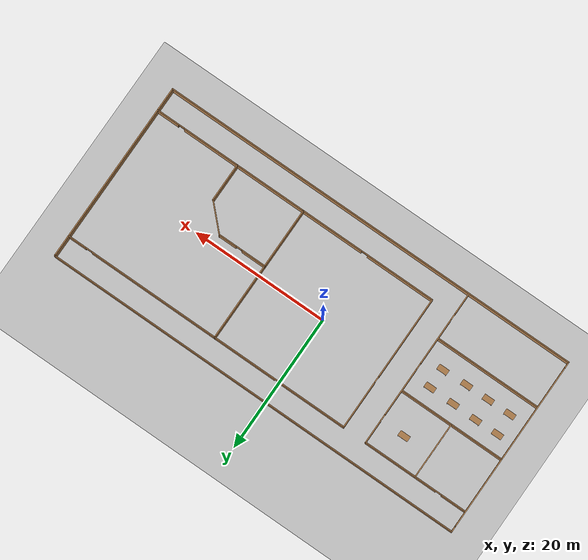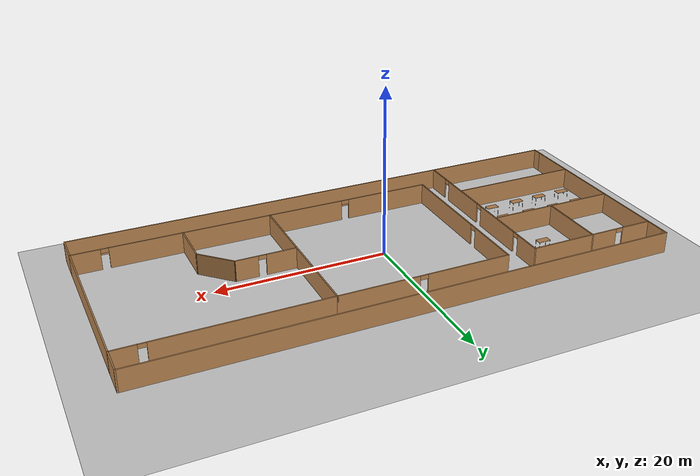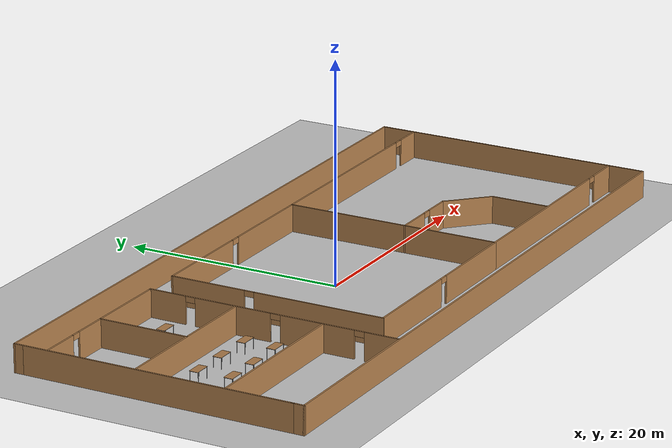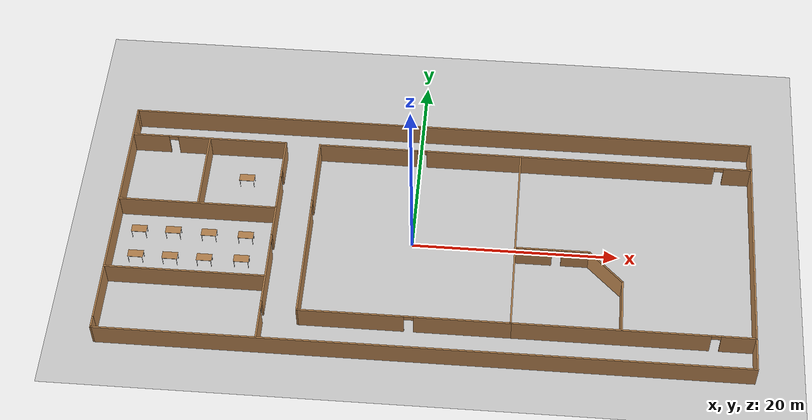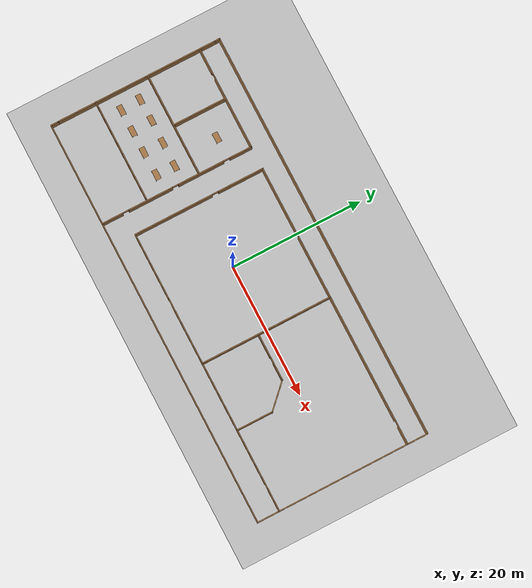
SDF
<sdf version="1.7">
 <world name="default">
  <model name="ground_plane">
   <static>1</static>
   <link name="link">
    <collision name="collision">
     <geometry><plane><normal>0 0 1</normal><size>100 100</size></plane></geometry>
     <surface>
      <contact><collide_bitmask>65535</collide_bitmask></contact>
      <friction><ode><mu>100</mu><mu2>50</mu2></ode></friction>
     </surface>
    </collision>
    <visual name="visual">
     <cast_shadows>0</cast_shadows>
     <geometry><plane><normal>0 0 1</normal><size>100 100</size></plane></geometry>
     <material>
      <script><uri>file://media/materials/scripts/gazebo.material</uri><name>Gazebo/Grey</name></script>
     </material>
    </visual>
   </link>
  </model>
  <model name="Industry_0">
   <pose>1.95149 -0.16782 0 0 -0 0</pose>
   <link name="Wall_107">
    <pose>-1.975 10.05 0 0 -0 0</pose>
    <visual name="Wall_107_Visual_0">
     <pose>-5.18531 0 1.25 0 -0 0</pose>
     <geometry><box><size>9.87937 0.15 2.5</size></box></geometry>
     <material>
      <script><uri>file://media/materials/scripts/gazebo.material</uri><name>Gazebo/Wood</name></script>
      <ambient>1 1 1 1</ambient>
     </material>
     <meta><layer>0</layer></meta>
    </visual>
    <collision name="Wall_107_Collision_0">
     <geometry><box><size>9.87937 0.15 2.5</size></box></geometry>
     <pose>-5.18531 0 1.25 0 -0 0</pose>
    </collision>
    <visual name="Wall_107_Visual_1">
     <pose>5.38969 0 1.25 0 -0 0</pose>
     <geometry><box><size>9.47063 0.15 2.5</size></box></geometry>
     <material>
      <script><uri>file://media/materials/scripts/gazebo.material</uri><name>Gazebo/Wood</name></script>
      <ambient>1 1 1 1</ambient>
     </material>
     <meta><layer>0</layer></meta>
    </visual>
    <collision name="Wall_107_Collision_1">
     <geometry><box><size>9.47063 0.15 2.5</size></box></geometry>
     <pose>5.38969 0 1.25 0 -0 0</pose>
    </collision>
    <visual name="Wall_107_Visual_2">
     <pose>0.204375 0 2.25 0 -0 0</pose>
     <geometry><box><size>0.9 0.15 0.5</size></box></geometry>
     <material>
      <script><uri>file://media/materials/scripts/gazebo.material</uri><name>Gazebo/Wood</name></script>
      <ambient>1 1 1 1</ambient>
     </material>
     <meta><layer>0</layer></meta>
    </visual>
    <collision name="Wall_107_Collision_2">
     <geometry><box><size>0.9 0.15 0.5</size></box></geometry>
     <pose>0.204375 0 2.25 0 -0 0</pose>
    </collision>
   </link>
   <link name="Wall_108">
    <collision name="Wall_108_Collision">
     <geometry><box><size>20 0.15 2.5</size></box></geometry>
     <pose>0 0 1.25 0 -0 0</pose>
    </collision>
    <visual name="Wall_108_Visual">
     <pose>0 0 1.25 0 -0 0</pose>
     <geometry><box><size>20 0.15 2.5</size></box></geometry>
     <material>
      <script><uri>file://media/materials/scripts/gazebo.material</uri><name>Gazebo/Wood</name></script>
      <ambient>1 1 1 1</ambient>
     </material>
     <meta><layer>0</layer></meta>
    </visual>
    <pose>8.075 0.125 0 0 -0 -1.5708</pose>
   </link>
   <link name="Wall_109">
    <pose>-1.975 -9.8 0 0 -0 3.14159</pose>
    <visual name="Wall_109_Visual_0">
     <pose>-5.52872 0 1.25 0 -0 0</pose>
     <geometry><box><size>9.19257 0.15 2.5</size></box></geometry>
     <material>
      <script><uri>file://media/materials/scripts/gazebo.material</uri><name>Gazebo/Wood</name></script>
      <ambient>1 1 1 1</ambient>
     </material>
     <meta><layer>0</layer></meta>
    </visual>
    <collision name="Wall_109_Collision_0">
     <geometry><box><size>9.19257 0.15 2.5</size></box></geometry>
     <pose>-5.52872 0 1.25 0 -0 0</pose>
    </collision>
    <visual name="Wall_109_Visual_1">
     <pose>5.04629 0 1.25 0 -0 0</pose>
     <geometry><box><size>10.1574 0.15 2.5</size></box></geometry>
     <material>
      <script><uri>file://media/materials/scripts/gazebo.material</uri><name>Gazebo/Wood</name></script>
      <ambient>1 1 1 1</ambient>
     </material>
     <meta><layer>0</layer></meta>
    </visual>
    <collision name="Wall_109_Collision_1">
     <geometry><box><size>10.1574 0.15 2.5</size></box></geometry>
     <pose>5.04629 0 1.25 0 -0 0</pose>
    </collision>
    <visual name="Wall_109_Visual_2">
     <pose>-0.482429 0 2.25 0 -0 0</pose>
     <geometry><box><size>0.9 0.15 0.5</size></box></geometry>
     <material>
      <script><uri>file://media/materials/scripts/gazebo.material</uri><name>Gazebo/Wood</name></script>
      <ambient>1 1 1 1</ambient>
     </material>
     <meta><layer>0</layer></meta>
    </visual>
    <collision name="Wall_109_Collision_2">
     <geometry><box><size>0.9 0.15 0.5</size></box></geometry>
     <pose>-0.482429 0 2.25 0 -0 0</pose>
    </collision>
   </link>
   <link name="Wall_111">
    <pose>-12.025 0.125 0 0 -0 -1.5708</pose>
    <visual name="Wall_111_Visual_0">
     <pose>-6.49758 0 1.25 0 -0 0</pose>
     <geometry><box><size>7.00483 0.15 2.5</size></box></geometry>
     <material>
      <script><uri>file://media/materials/scripts/gazebo.material</uri><name>Gazebo/Wood</name></script>
      <ambient>1 1 1 1</ambient>
     </material>
     <meta><layer>0</layer></meta>
    </visual>
    <collision name="Wall_111_Collision_0">
     <geometry><box><size>7.00483 0.15 2.5</size></box></geometry>
     <pose>-6.49758 0 1.25 0 -0 0</pose>
    </collision>
    <visual name="Wall_111_Visual_1">
     <pose>3.95241 0 1.25 0 -0 0</pose>
     <geometry><box><size>12.0952 0.15 2.5</size></box></geometry>
     <material>
      <script><uri>file://media/materials/scripts/gazebo.material</uri><name>Gazebo/Wood</name></script>
      <ambient>1 1 1 1</ambient>
     </material>
     <meta><layer>0</layer></meta>
    </visual>
    <collision name="Wall_111_Collision_1">
     <geometry><box><size>12.0952 0.15 2.5</size></box></geometry>
     <pose>3.95241 0 1.25 0 -0 0</pose>
    </collision>
    <visual name="Wall_111_Visual_2">
     <pose>-2.54517 0 2.25 0 -0 0</pose>
     <geometry><box><size>0.9 0.15 0.5</size></box></geometry>
     <material>
      <script><uri>file://media/materials/scripts/gazebo.material</uri><name>Gazebo/Wood</name></script>
      <ambient>1 1 1 1</ambient>
     </material>
     <meta><layer>0</layer></meta>
    </visual>
    <collision name="Wall_111_Collision_2">
     <geometry><box><size>0.9 0.15 0.5</size></box></geometry>
     <pose>-2.54517 0 2.25 0 -0 0</pose>
    </collision>
   </link>
   <link name="Wall_113">
    <pose>19.5 10.05 0 0 -0 0</pose>
    <visual name="Wall_113_Visual_0">
     <pose>-1.84564 0 1.25 0 -0 0</pose>
     <geometry><box><size>19.3087 0.15 2.5</size></box></geometry>
     <material>
      <script><uri>file://media/materials/scripts/gazebo.material</uri><name>Gazebo/Wood</name></script>
      <ambient>1 1 1 1</ambient>
     </material>
     <meta><layer>0</layer></meta>
    </visual>
    <collision name="Wall_113_Collision_0">
     <geometry><box><size>19.3087 0.15 2.5</size></box></geometry>
     <pose>-1.84564 0 1.25 0 -0 0</pose>
    </collision>
    <visual name="Wall_113_Visual_1">
     <pose>10.1044 0 1.25 0 -0 0</pose>
     <geometry><box><size>2.79128 0.15 2.5</size></box></geometry>
     <material>
      <script><uri>file://media/materials/scripts/gazebo.material</uri><name>Gazebo/Wood</name></script>
      <ambient>1 1 1 1</ambient>
     </material>
     <meta><layer>0</layer></meta>
    </visual>
    <collision name="Wall_113_Collision_1">
     <geometry><box><size>2.79128 0.15 2.5</size></box></geometry>
     <pose>10.1044 0 1.25 0 -0 0</pose>
    </collision>
    <visual name="Wall_113_Visual_2">
     <pose>8.25872 0 2.25 0 -0 0</pose>
     <geometry><box><size>0.9 0.15 0.5</size></box></geometry>
     <material>
      <script><uri>file://media/materials/scripts/gazebo.material</uri><name>Gazebo/Wood</name></script>
      <ambient>1 1 1 1</ambient>
     </material>
     <meta><layer>0</layer></meta>
    </visual>
    <collision name="Wall_113_Collision_2">
     <geometry><box><size>0.9 0.15 0.5</size></box></geometry>
     <pose>8.25872 0 2.25 0 -0 0</pose>
    </collision>
   </link>
   <link name="Wall_114">
    <collision name="Wall_114_Collision">
     <geometry><box><size>20 0.15 2.5</size></box></geometry>
     <pose>0 0 1.25 0 -0 0</pose>
    </collision>
    <visual name="Wall_114_Visual">
     <pose>0 0 1.25 0 -0 0</pose>
     <geometry><box><size>20 0.15 2.5</size></box></geometry>
     <material>
      <script><uri>file://media/materials/scripts/gazebo.material</uri><name>Gazebo/Wood</name></script>
      <ambient>1 1 1 1</ambient>
     </material>
     <meta><layer>0</layer></meta>
    </visual>
    <pose>30.925 0.125 0 0 -0 -1.5708</pose>
   </link>
   <link name="Wall_115">
    <pose>19.5 -9.8 0 0 -0 3.14159</pose>
    <visual name="Wall_115_Visual_0">
     <pose>-9.82631 0 1.25 0 -0 0</pose>
     <geometry><box><size>3.34739 0.15 2.5</size></box></geometry>
     <material>
      <script><uri>file://media/materials/scripts/gazebo.material</uri><name>Gazebo/Wood</name></script>
      <ambient>1 1 1 1</ambient>
     </material>
     <meta><layer>0</layer></meta>
    </visual>
    <collision name="Wall_115_Collision_0">
     <geometry><box><size>3.34739 0.15 2.5</size></box></geometry>
     <pose>-9.82631 0 1.25 0 -0 0</pose>
    </collision>
    <visual name="Wall_115_Visual_1">
     <pose>2.12369 0 1.25 0 -0 0</pose>
     <geometry><box><size>18.7526 0.15 2.5</size></box></geometry>
     <material>
      <script><uri>file://media/materials/scripts/gazebo.material</uri><name>Gazebo/Wood</name></script>
      <ambient>1 1 1 1</ambient>
     </material>
     <meta><layer>0</layer></meta>
    </visual>
    <collision name="Wall_115_Collision_1">
     <geometry><box><size>18.7526 0.15 2.5</size></box></geometry>
     <pose>2.12369 0 1.25 0 -0 0</pose>
    </collision>
    <visual name="Wall_115_Visual_2">
     <pose>-7.70261 0 2.25 0 -0 0</pose>
     <geometry><box><size>0.9 0.15 0.5</size></box></geometry>
     <material>
      <script><uri>file://media/materials/scripts/gazebo.material</uri><name>Gazebo/Wood</name></script>
      <ambient>1 1 1 1</ambient>
     </material>
     <meta><layer>0</layer></meta>
    </visual>
    <collision name="Wall_115_Collision_2">
     <geometry><box><size>0.9 0.15 0.5</size></box></geometry>
     <pose>-7.70261 0 2.25 0 -0 0</pose>
    </collision>
   </link>
   <link name="Wall_119">
    <collision name="Wall_119_Collision">
     <geometry><box><size>24.75 0.15 2.5</size></box></geometry>
     <pose>0 0 1.25 0 -0 0</pose>
    </collision>
    <visual name="Wall_119_Visual">
     <pose>0 0 1.25 0 -0 0</pose>
     <geometry><box><size>24.75 0.15 2.5</size></box></geometry>
     <material>
      <script><uri>file://media/materials/scripts/gazebo.material</uri><name>Gazebo/Wood</name></script>
      <ambient>1 1 1 1</ambient>
     </material>
     <meta><layer>0</layer></meta>
    </visual>
    <pose>-30.925 0.1 0 0 -0 -1.5708</pose>
   </link>
   <link name="Wall_135">
    <collision name="Wall_135_Collision">
     <geometry><box><size>3.25 0.15 2.5</size></box></geometry>
     <pose>0 0 1.25 0 -0 0</pose>
    </collision>
    <visual name="Wall_135_Visual">
     <pose>0 0 1.25 0 -0 0</pose>
     <geometry><box><size>3.25 0.15 2.5</size></box></geometry>
     <material>
      <script><uri>file://media/materials/scripts/gazebo.material</uri><name>Gazebo/Wood</name></script>
      <ambient>1 1 1 1</ambient>
     </material>
     <meta><layer>0</layer></meta>
    </visual>
    <pose>30.925 11.6 0 0 -0 1.5708</pose>
   </link>
   <link name="Wall_136">
    <collision name="Wall_136_Collision">
     <geometry><box><size>62 0.15 2.5</size></box></geometry>
     <pose>0 0 1.25 0 -0 0</pose>
    </collision>
    <visual name="Wall_136_Visual">
     <pose>0 0 1.25 0 -0 0</pose>
     <geometry><box><size>62 0.15 2.5</size></box></geometry>
     <material>
      <script><uri>file://media/materials/scripts/gazebo.material</uri><name>Gazebo/Wood</name></script>
      <ambient>1 1 1 1</ambient>
     </material>
     <meta><layer>0</layer></meta>
    </visual>
    <pose>1e-06 13.15 0 0 -0 3.14159</pose>
   </link>
   <link name="Wall_137">
    <collision name="Wall_137_Collision">
     <geometry><box><size>0.9 0.15 2.5</size></box></geometry>
     <pose>0 0 1.25 0 -0 0</pose>
    </collision>
    <visual name="Wall_137_Visual">
     <pose>0 0 1.25 0 -0 0</pose>
     <geometry><box><size>0.9 0.15 2.5</size></box></geometry>
     <material>
      <script><uri>file://media/materials/scripts/gazebo.material</uri><name>Gazebo/Wood</name></script>
      <ambient>1 1 1 1</ambient>
     </material>
     <meta><layer>0</layer></meta>
    </visual>
    <pose>-30.925 12.775 0 0 -0 -1.5708</pose>
   </link>
   <link name="Wall_139">
    <collision name="Wall_139_Collision">
     <geometry><box><size>3.5 0.15 2.5</size></box></geometry>
     <pose>0 0 1.25 0 -0 0</pose>
    </collision>
    <visual name="Wall_139_Visual">
     <pose>0 0 1.25 0 -0 0</pose>
     <geometry><box><size>3.5 0.15 2.5</size></box></geometry>
     <material>
      <script><uri>file://media/materials/scripts/gazebo.material</uri><name>Gazebo/Wood</name></script>
      <ambient>1 1 1 1</ambient>
     </material>
     <meta><layer>0</layer></meta>
    </visual>
    <pose>30.925 -11.475 0 0 -0 -1.5708</pose>
   </link>
   <link name="Wall_140">
    <collision name="Wall_140_Collision">
     <geometry><box><size>62 0.15 2.5</size></box></geometry>
     <pose>0 0 1.25 0 -0 0</pose>
    </collision>
    <visual name="Wall_140_Visual">
     <pose>0 0 1.25 0 -0 0</pose>
     <geometry><box><size>62 0.15 2.5</size></box></geometry>
     <material>
      <script><uri>file://media/materials/scripts/gazebo.material</uri><name>Gazebo/Wood</name></script>
      <ambient>1 1 1 1</ambient>
     </material>
     <meta><layer>0</layer></meta>
    </visual>
    <pose>1e-06 -13.15 0 0 -0 3.14159</pose>
   </link>
   <link name="Wall_141">
    <collision name="Wall_141_Collision">
     <geometry><box><size>1.25 0.15 2.5</size></box></geometry>
     <pose>0 0 1.25 0 -0 0</pose>
    </collision>
    <visual name="Wall_141_Visual">
     <pose>0 0 1.25 0 -0 0</pose>
     <geometry><box><size>1.25 0.15 2.5</size></box></geometry>
     <material>
      <script><uri>file://media/materials/scripts/gazebo.material</uri><name>Gazebo/Wood</name></script>
      <ambient>1 1 1 1</ambient>
     </material>
     <meta><layer>0</layer></meta>
    </visual>
    <pose>-30.925 -12.6 0 0 -0 1.5708</pose>
   </link>
   <link name="Wall_150">
    <pose>-15.4509 -1.48359 0 0 -0 -1.5708</pose>
    <visual name="Wall_150_Visual_0">
     <pose>-9.89393 0 1.25 0 -0 0</pose>
     <geometry><box><size>3.46215 0.15 2.5</size></box></geometry>
     <material>
      <script><uri>file://media/materials/scripts/gazebo.material</uri><name>Gazebo/Wood</name></script>
      <ambient>1 1 1 1</ambient>
     </material>
     <meta><layer>0</layer></meta>
    </visual>
    <collision name="Wall_150_Collision_0">
     <geometry><box><size>3.46215 0.15 2.5</size></box></geometry>
     <pose>-9.89393 0 1.25 0 -0 0</pose>
    </collision>
    <visual name="Wall_150_Visual_1">
     <pose>-3.70887 0 1.25 0 -0 0</pose>
     <geometry><box><size>7.10796 0.15 2.5</size></box></geometry>
     <material>
      <script><uri>file://media/materials/scripts/gazebo.material</uri><name>Gazebo/Wood</name></script>
      <ambient>1 1 1 1</ambient>
     </material>
     <meta><layer>0</layer></meta>
    </visual>
    <collision name="Wall_150_Collision_1">
     <geometry><box><size>7.10796 0.15 2.5</size></box></geometry>
     <pose>-3.70887 0 1.25 0 -0 0</pose>
    </collision>
    <visual name="Wall_150_Visual_2">
     <pose>4.16006 0 1.25 0 -0 0</pose>
     <geometry><box><size>6.8299 0.15 2.5</size></box></geometry>
     <material>
      <script><uri>file://media/materials/scripts/gazebo.material</uri><name>Gazebo/Wood</name></script>
      <ambient>1 1 1 1</ambient>
     </material>
     <meta><layer>0</layer></meta>
    </visual>
    <collision name="Wall_150_Collision_2">
     <geometry><box><size>6.8299 0.15 2.5</size></box></geometry>
     <pose>4.16006 0 1.25 0 -0 0</pose>
    </collision>
    <visual name="Wall_150_Visual_3">
     <pose>10.05 0 1.25 0 -0 0</pose>
     <geometry><box><size>3.14999 0.15 2.5</size></box></geometry>
     <material>
      <script><uri>file://media/materials/scripts/gazebo.material</uri><name>Gazebo/Wood</name></script>
      <ambient>1 1 1 1</ambient>
     </material>
     <meta><layer>0</layer></meta>
    </visual>
    <collision name="Wall_150_Collision_3">
     <geometry><box><size>3.14999 0.15 2.5</size></box></geometry>
     <pose>10.05 0 1.25 0 -0 0</pose>
    </collision>
    <visual name="Wall_150_Visual_4">
     <pose>-7.71285 0 2.25 0 -0 0</pose>
     <geometry><box><size>0.9 0.15 0.5</size></box></geometry>
     <material>
      <script><uri>file://media/materials/scripts/gazebo.material</uri><name>Gazebo/Wood</name></script>
      <ambient>1 1 1 1</ambient>
     </material>
     <meta><layer>0</layer></meta>
    </visual>
    <collision name="Wall_150_Collision_4">
     <geometry><box><size>0.9 0.15 0.5</size></box></geometry>
     <pose>-7.71285 0 2.25 0 -0 0</pose>
    </collision>
    <visual name="Wall_150_Visual_5">
     <pose>0.295105 0 2.25 0 -0 0</pose>
     <geometry><box><size>0.9 0.15 0.5</size></box></geometry>
     <material>
      <script><uri>file://media/materials/scripts/gazebo.material</uri><name>Gazebo/Wood</name></script>
      <ambient>1 1 1 1</ambient>
     </material>
     <meta><layer>0</layer></meta>
    </visual>
    <collision name="Wall_150_Collision_5">
     <geometry><box><size>0.9 0.15 0.5</size></box></geometry>
     <pose>0.295105 0 2.25 0 -0 0</pose>
    </collision>
    <visual name="Wall_150_Visual_6">
     <pose>8.02501 0 2.25 0 -0 0</pose>
     <geometry><box><size>0.9 0.15 0.5</size></box></geometry>
     <material>
      <script><uri>file://media/materials/scripts/gazebo.material</uri><name>Gazebo/Wood</name></script>
      <ambient>1 1 1 1</ambient>
     </material>
     <meta><layer>0</layer></meta>
    </visual>
    <collision name="Wall_150_Collision_6">
     <geometry><box><size>0.9 0.15 0.5</size></box></geometry>
     <pose>8.02501 0 2.25 0 -0 0</pose>
    </collision>
   </link>
   <link name="Wall_152">
    <pose>-23.1259 10.0664 0 0 -0 3.14159</pose>
    <visual name="Wall_152_Visual_0">
     <pose>-2.2652 0 1.25 0 -0 0</pose>
     <geometry><box><size>10.9696 0.15 2.5</size></box></geometry>
     <material>
      <script><uri>file://media/materials/scripts/gazebo.material</uri><name>Gazebo/Wood</name></script>
      <ambient>1 1 1 1</ambient>
     </material>
     <meta><layer>0</layer></meta>
    </visual>
    <collision name="Wall_152_Collision_0">
     <geometry><box><size>10.9696 0.15 2.5</size></box></geometry>
     <pose>-2.2652 0 1.25 0 -0 0</pose>
    </collision>
    <visual name="Wall_152_Visual_1">
     <pose>5.9348 0 1.25 0 -0 0</pose>
     <geometry><box><size>3.63039 0.15 2.5</size></box></geometry>
     <material>
      <script><uri>file://media/materials/scripts/gazebo.material</uri><name>Gazebo/Wood</name></script>
      <ambient>1 1 1 1</ambient>
     </material>
     <meta><layer>0</layer></meta>
    </visual>
    <collision name="Wall_152_Collision_1">
     <geometry><box><size>3.63039 0.15 2.5</size></box></geometry>
     <pose>5.9348 0 1.25 0 -0 0</pose>
    </collision>
    <visual name="Wall_152_Visual_2">
     <pose>3.66961 0 2.25 0 -0 0</pose>
     <geometry><box><size>0.9 0.15 0.5</size></box></geometry>
     <material>
      <script><uri>file://media/materials/scripts/gazebo.material</uri><name>Gazebo/Wood</name></script>
      <ambient>1 1 1 1</ambient>
     </material>
     <meta><layer>0</layer></meta>
    </visual>
    <collision name="Wall_152_Collision_2">
     <geometry><box><size>0.9 0.15 0.5</size></box></geometry>
     <pose>3.66961 0 2.25 0 -0 0</pose>
    </collision>
   </link>
   <link name="Wall_156">
    <collision name="Wall_156_Collision">
     <geometry><box><size>15.5 0.15 2.5</size></box></geometry>
     <pose>0 0 1.25 0 -0 0</pose>
    </collision>
    <visual name="Wall_156_Visual">
     <pose>0 0 1.25 0 -0 0</pose>
     <geometry><box><size>15.5 0.15 2.5</size></box></geometry>
     <material>
      <script><uri>file://media/materials/scripts/gazebo.material</uri><name>Gazebo/Wood</name></script>
      <ambient>1 1 1 1</ambient>
     </material>
     <meta><layer>0</layer></meta>
    </visual>
    <pose>-23.2371 -6.17195 0 0 -0 3.14159</pose>
   </link>
   <link name="Wall_158">
    <collision name="Wall_158_Collision">
     <geometry><box><size>15.5 0.15 2.5</size></box></geometry>
     <pose>0 0 1.25 0 -0 0</pose>
    </collision>
    <visual name="Wall_158_Visual">
     <pose>0 0 1.25 0 -0 0</pose>
     <geometry><box><size>15.5 0.15 2.5</size></box></geometry>
     <material>
      <script><uri>file://media/materials/scripts/gazebo.material</uri><name>Gazebo/Wood</name></script>
      <ambient>1 1 1 1</ambient>
     </material>
     <meta><layer>0</layer></meta>
    </visual>
    <pose>-23.1815 1.94723 0 0 -0 3.14159</pose>
   </link>
   <link name="Wall_162">
    <collision name="Wall_162_Collision">
     <geometry><box><size>8.25 0.15 2.5</size></box></geometry>
     <pose>0 0 1.25 0 -0 0</pose>
    </collision>
    <visual name="Wall_162_Visual">
     <pose>0 0 1.25 0 -0 0</pose>
     <geometry><box><size>8.25 0.15 2.5</size></box></geometry>
     <material>
      <script><uri>file://media/materials/scripts/gazebo.material</uri><name>Gazebo/Wood</name></script>
      <ambient>1 1 1 1</ambient>
     </material>
     <meta><layer>0</layer></meta>
    </visual>
    <pose>-23.1252 6.01641 0 0 -0 -1.5708</pose>
   </link>
   <link name="Wall_166">
    <pose>11.6225 -1.11137 0 0 -0 0</pose>
    <visual name="Wall_166_Visual_0">
     <pose>-1.81051 0 1.25 0 -0 0</pose>
     <geometry><box><size>3.62898 0.15 2.5</size></box></geometry>
     <material>
      <script><uri>file://media/materials/scripts/gazebo.material</uri><name>Gazebo/Wood</name></script>
      <ambient>1 1 1 1</ambient>
     </material>
     <meta><layer>0</layer></meta>
    </visual>
    <collision name="Wall_166_Collision_0">
     <geometry><box><size>3.62898 0.15 2.5</size></box></geometry>
     <pose>-1.81051 0 1.25 0 -0 0</pose>
    </collision>
    <visual name="Wall_166_Visual_1">
     <pose>2.26449 0 1.25 0 -0 0</pose>
     <geometry><box><size>2.72102 0.15 2.5</size></box></geometry>
     <material>
      <script><uri>file://media/materials/scripts/gazebo.material</uri><name>Gazebo/Wood</name></script>
      <ambient>1 1 1 1</ambient>
     </material>
     <meta><layer>0</layer></meta>
    </visual>
    <collision name="Wall_166_Collision_1">
     <geometry><box><size>2.72102 0.15 2.5</size></box></geometry>
     <pose>2.26449 0 1.25 0 -0 0</pose>
    </collision>
    <visual name="Wall_166_Visual_2">
     <pose>0.453979 0 2.25 0 -0 0</pose>
     <geometry><box><size>0.9 0.15 0.5</size></box></geometry>
     <material>
      <script><uri>file://media/materials/scripts/gazebo.material</uri><name>Gazebo/Wood</name></script>
      <ambient>1 1 1 1</ambient>
     </material>
     <meta><layer>0</layer></meta>
    </visual>
    <collision name="Wall_166_Collision_2">
     <geometry><box><size>0.9 0.15 0.5</size></box></geometry>
     <pose>0.453979 0 2.25 0 -0 0</pose>
    </collision>
   </link>
   <link name="Wall_167">
    <collision name="Wall_167_Collision">
     <geometry><box><size>4.75 0.15 2.5</size></box></geometry>
     <pose>0 0 1.25 0 -0 0</pose>
    </collision>
    <visual name="Wall_167_Visual">
     <pose>0 0 1.25 0 -0 0</pose>
     <geometry><box><size>4.75 0.15 2.5</size></box></geometry>
     <material>
      <script><uri>file://media/materials/scripts/gazebo.material</uri><name>Gazebo/Wood</name></script>
      <ambient>1 1 1 1</ambient>
     </material>
     <meta><layer>0</layer></meta>
    </visual>
    <pose>16.7988 -2.73771 0 0 -0 -0.785398</pose>
   </link>
   <link name="Wall_168">
    <collision name="Wall_168_Collision">
     <geometry><box><size>5.5 0.15 2.5</size></box></geometry>
     <pose>0 0 1.25 0 -0 0</pose>
    </collision>
    <visual name="Wall_168_Visual">
     <pose>0 0 1.25 0 -0 0</pose>
     <geometry><box><size>5.5 0.15 2.5</size></box></geometry>
     <material>
      <script><uri>file://media/materials/scripts/gazebo.material</uri><name>Gazebo/Wood</name></script>
      <ambient>1 1 1 1</ambient>
     </material>
     <meta><layer>0</layer></meta>
    </visual>
    <pose>18.4252 -7.03906 0 0 -0 -1.5708</pose>
   </link>
   <static>1</static>
  </model>
  <model name="table">
   <static>1</static>
   <link name="link">
    <collision name="surface">
     <pose>0 0 1 0 -0 0</pose>
     <geometry><box><size>1.5 0.8 0.03</size></box></geometry>
     <surface><friction><ode><mu>0.6</mu><mu2>0.6</mu2></ode></friction></surface>
    </collision>
    <visual name="visual1">
     <pose>0 0 1 0 -0 0</pose>
     <geometry><box><size>1.5 0.8 0.03</size></box></geometry>
     <material>
      <script><uri>file://media/materials/scripts/gazebo.material</uri><name>Gazebo/Wood</name></script>
     </material>
    </visual>
    <collision name="front_left_leg">
     <pose>0.68 0.38 0.5 0 -0 0</pose>
     <geometry><cylinder><radius>0.02</radius><length>1</length></cylinder></geometry>
    </collision>
    <visual name="front_left_leg">
     <pose>0.68 0.38 0.5 0 -0 0</pose>
     <geometry><cylinder><radius>0.02</radius><length>1</length></cylinder></geometry>
     <material>
      <script><uri>file://media/materials/scripts/gazebo.material</uri><name>Gazebo/Grey</name></script>
     </material>
    </visual>
    <collision name="front_right_leg">
     <pose>0.68 -0.38 0.5 0 -0 0</pose>
     <geometry><cylinder><radius>0.02</radius><length>1</length></cylinder></geometry>
    </collision>
    <visual name="front_right_leg">
     <pose>0.68 -0.38 0.5 0 -0 0</pose>
     <geometry><cylinder><radius>0.02</radius><length>1</length></cylinder></geometry>
     <material>
      <script><uri>file://media/materials/scripts/gazebo.material</uri><name>Gazebo/Grey</name></script>
     </material>
    </visual>
    <collision name="back_right_leg">
     <pose>-0.68 -0.38 0.5 0 -0 0</pose>
     <geometry><cylinder><radius>0.02</radius><length>1</length></cylinder></geometry>
    </collision>
    <visual name="back_right_leg">
     <pose>-0.68 -0.38 0.5 0 -0 0</pose>
     <geometry><cylinder><radius>0.02</radius><length>1</length></cylinder></geometry>
     <material>
      <script><uri>file://media/materials/scripts/gazebo.material</uri><name>Gazebo/Grey</name></script>
     </material>
    </visual>
    <collision name="back_left_leg">
     <pose>-0.68 0.38 0.5 0 -0 0</pose>
     <geometry><cylinder><radius>0.02</radius><length>1</length></cylinder></geometry>
    </collision>
    <visual name="back_left_leg">
     <pose>-0.68 0.38 0.5 0 -0 0</pose>
     <geometry><cylinder><radius>0.02</radius><length>1</length></cylinder></geometry>
     <material>
      <script><uri>file://media/materials/scripts/gazebo.material</uri><name>Gazebo/Grey</name></script>
     </material>
    </visual>
   </link>
   <pose>-17.05 6.36138 0 0 -0 0</pose>
  </model>
  <model name="table_0">
   <static>1</static>
   <link name="link">
    <collision name="surface">
     <pose>0 0 1 0 -0 0</pose>
     <geometry><box><size>1.5 0.8 0.03</size></box></geometry>
     <surface><friction><ode><mu>0.6</mu><mu2>0.6</mu2></ode></friction></surface>
    </collision>
    <visual name="visual1">
     <pose>0 0 1 0 -0 0</pose>
     <geometry><box><size>1.5 0.8 0.03</size></box></geometry>
     <material>
      <script><uri>file://media/materials/scripts/gazebo.material</uri><name>Gazebo/Wood</name></script>
     </material>
    </visual>
    <collision name="front_left_leg">
     <pose>0.68 0.38 0.5 0 -0 0</pose>
     <geometry><cylinder><radius>0.02</radius><length>1</length></cylinder></geometry>
    </collision>
    <visual name="front_left_leg">
     <pose>0.68 0.38 0.5 0 -0 0</pose>
     <geometry><cylinder><radius>0.02</radius><length>1</length></cylinder></geometry>
     <material>
      <script><uri>file://media/materials/scripts/gazebo.material</uri><name>Gazebo/Grey</name></script>
     </material>
    </visual>
    <collision name="front_right_leg">
     <pose>0.68 -0.38 0.5 0 -0 0</pose>
     <geometry><cylinder><radius>0.02</radius><length>1</length></cylinder></geometry>
    </collision>
    <visual name="front_right_leg">
     <pose>0.68 -0.38 0.5 0 -0 0</pose>
     <geometry><cylinder><radius>0.02</radius><length>1</length></cylinder></geometry>
     <material>
      <script><uri>file://media/materials/scripts/gazebo.material</uri><name>Gazebo/Grey</name></script>
     </material>
    </visual>
    <collision name="back_right_leg">
     <pose>-0.68 -0.38 0.5 0 -0 0</pose>
     <geometry><cylinder><radius>0.02</radius><length>1</length></cylinder></geometry>
    </collision>
    <visual name="back_right_leg">
     <pose>-0.68 -0.38 0.5 0 -0 0</pose>
     <geometry><cylinder><radius>0.02</radius><length>1</length></cylinder></geometry>
     <material>
      <script><uri>file://media/materials/scripts/gazebo.material</uri><name>Gazebo/Grey</name></script>
     </material>
    </visual>
    <collision name="back_left_leg">
     <pose>-0.68 0.38 0.5 0 -0 0</pose>
     <geometry><cylinder><radius>0.02</radius><length>1</length></cylinder></geometry>
    </collision>
    <visual name="back_left_leg">
     <pose>-0.68 0.38 0.5 0 -0 0</pose>
     <geometry><cylinder><radius>0.02</radius><length>1</length></cylinder></geometry>
     <material>
      <script><uri>file://media/materials/scripts/gazebo.material</uri><name>Gazebo/Grey</name></script>
     </material>
    </visual>
   </link>
   <pose>-26.7247 -0.656753 0 0 -0 0</pose>
  </model>
  <model name="table_1">
   <static>1</static>
   <link name="link">
    <collision name="surface">
     <pose>0 0 1 0 -0 0</pose>
     <geometry><box><size>1.5 0.8 0.03</size></box></geometry>
     <surface><friction><ode><mu>0.6</mu><mu2>0.6</mu2></ode></friction></surface>
    </collision>
    <visual name="visual1">
     <pose>0 0 1 0 -0 0</pose>
     <geometry><box><size>1.5 0.8 0.03</size></box></geometry>
     <material>
      <script><uri>file://media/materials/scripts/gazebo.material</uri><name>Gazebo/Wood</name></script>
     </material>
    </visual>
    <collision name="front_left_leg">
     <pose>0.68 0.38 0.5 0 -0 0</pose>
     <geometry><cylinder><radius>0.02</radius><length>1</length></cylinder></geometry>
    </collision>
    <visual name="front_left_leg">
     <pose>0.68 0.38 0.5 0 -0 0</pose>
     <geometry><cylinder><radius>0.02</radius><length>1</length></cylinder></geometry>
     <material>
      <script><uri>file://media/materials/scripts/gazebo.material</uri><name>Gazebo/Grey</name></script>
     </material>
    </visual>
    <collision name="front_right_leg">
     <pose>0.68 -0.38 0.5 0 -0 0</pose>
     <geometry><cylinder><radius>0.02</radius><length>1</length></cylinder></geometry>
    </collision>
    <visual name="front_right_leg">
     <pose>0.68 -0.38 0.5 0 -0 0</pose>
     <geometry><cylinder><radius>0.02</radius><length>1</length></cylinder></geometry>
     <material>
      <script><uri>file://media/materials/scripts/gazebo.material</uri><name>Gazebo/Grey</name></script>
     </material>
    </visual>
    <collision name="back_right_leg">
     <pose>-0.68 -0.38 0.5 0 -0 0</pose>
     <geometry><cylinder><radius>0.02</radius><length>1</length></cylinder></geometry>
    </collision>
    <visual name="back_right_leg">
     <pose>-0.68 -0.38 0.5 0 -0 0</pose>
     <geometry><cylinder><radius>0.02</radius><length>1</length></cylinder></geometry>
     <material>
      <script><uri>file://media/materials/scripts/gazebo.material</uri><name>Gazebo/Grey</name></script>
     </material>
    </visual>
    <collision name="back_left_leg">
     <pose>-0.68 0.38 0.5 0 -0 0</pose>
     <geometry><cylinder><radius>0.02</radius><length>1</length></cylinder></geometry>
    </collision>
    <visual name="back_left_leg">
     <pose>-0.68 0.38 0.5 0 -0 0</pose>
     <geometry><cylinder><radius>0.02</radius><length>1</length></cylinder></geometry>
     <material>
      <script><uri>file://media/materials/scripts/gazebo.material</uri><name>Gazebo/Grey</name></script>
     </material>
    </visual>
   </link>
   <pose>-26.5746 -3.65977 0 0 -0 0</pose>
  </model>
  <model name="table_2">
   <static>1</static>
   <link name="link">
    <collision name="surface">
     <pose>0 0 1 0 -0 0</pose>
     <geometry><box><size>1.5 0.8 0.03</size></box></geometry>
     <surface><friction><ode><mu>0.6</mu><mu2>0.6</mu2></ode></friction></surface>
    </collision>
    <visual name="visual1">
     <pose>0 0 1 0 -0 0</pose>
     <geometry><box><size>1.5 0.8 0.03</size></box></geometry>
     <material>
      <script><uri>file://media/materials/scripts/gazebo.material</uri><name>Gazebo/Wood</name></script>
     </material>
    </visual>
    <collision name="front_left_leg">
     <pose>0.68 0.38 0.5 0 -0 0</pose>
     <geometry><cylinder><radius>0.02</radius><length>1</length></cylinder></geometry>
    </collision>
    <visual name="front_left_leg">
     <pose>0.68 0.38 0.5 0 -0 0</pose>
     <geometry><cylinder><radius>0.02</radius><length>1</length></cylinder></geometry>
     <material>
      <script><uri>file://media/materials/scripts/gazebo.material</uri><name>Gazebo/Grey</name></script>
     </material>
    </visual>
    <collision name="front_right_leg">
     <pose>0.68 -0.38 0.5 0 -0 0</pose>
     <geometry><cylinder><radius>0.02</radius><length>1</length></cylinder></geometry>
    </collision>
    <visual name="front_right_leg">
     <pose>0.68 -0.38 0.5 0 -0 0</pose>
     <geometry><cylinder><radius>0.02</radius><length>1</length></cylinder></geometry>
     <material>
      <script><uri>file://media/materials/scripts/gazebo.material</uri><name>Gazebo/Grey</name></script>
     </material>
    </visual>
    <collision name="back_right_leg">
     <pose>-0.68 -0.38 0.5 0 -0 0</pose>
     <geometry><cylinder><radius>0.02</radius><length>1</length></cylinder></geometry>
    </collision>
    <visual name="back_right_leg">
     <pose>-0.68 -0.38 0.5 0 -0 0</pose>
     <geometry><cylinder><radius>0.02</radius><length>1</length></cylinder></geometry>
     <material>
      <script><uri>file://media/materials/scripts/gazebo.material</uri><name>Gazebo/Grey</name></script>
     </material>
    </visual>
    <collision name="back_left_leg">
     <pose>-0.68 0.38 0.5 0 -0 0</pose>
     <geometry><cylinder><radius>0.02</radius><length>1</length></cylinder></geometry>
    </collision>
    <visual name="back_left_leg">
     <pose>-0.68 0.38 0.5 0 -0 0</pose>
     <geometry><cylinder><radius>0.02</radius><length>1</length></cylinder></geometry>
     <material>
      <script><uri>file://media/materials/scripts/gazebo.material</uri><name>Gazebo/Grey</name></script>
     </material>
    </visual>
   </link>
   <pose>-23.379 -0.587789 0 0 -0 0</pose>
  </model>
  <model name="table_3">
   <static>1</static>
   <link name="link">
    <collision name="surface">
     <pose>0 0 1 0 -0 0</pose>
     <geometry><box><size>1.5 0.8 0.03</size></box></geometry>
     <surface><friction><ode><mu>0.6</mu><mu2>0.6</mu2></ode></friction></surface>
    </collision>
    <visual name="visual1">
     <pose>0 0 1 0 -0 0</pose>
     <geometry><box><size>1.5 0.8 0.03</size></box></geometry>
     <material>
      <script><uri>file://media/materials/scripts/gazebo.material</uri><name>Gazebo/Wood</name></script>
     </material>
    </visual>
    <collision name="front_left_leg">
     <pose>0.68 0.38 0.5 0 -0 0</pose>
     <geometry><cylinder><radius>0.02</radius><length>1</length></cylinder></geometry>
    </collision>
    <visual name="front_left_leg">
     <pose>0.68 0.38 0.5 0 -0 0</pose>
     <geometry><cylinder><radius>0.02</radius><length>1</length></cylinder></geometry>
     <material>
      <script><uri>file://media/materials/scripts/gazebo.material</uri><name>Gazebo/Grey</name></script>
     </material>
    </visual>
    <collision name="front_right_leg">
     <pose>0.68 -0.38 0.5 0 -0 0</pose>
     <geometry><cylinder><radius>0.02</radius><length>1</length></cylinder></geometry>
    </collision>
    <visual name="front_right_leg">
     <pose>0.68 -0.38 0.5 0 -0 0</pose>
     <geometry><cylinder><radius>0.02</radius><length>1</length></cylinder></geometry>
     <material>
      <script><uri>file://media/materials/scripts/gazebo.material</uri><name>Gazebo/Grey</name></script>
     </material>
    </visual>
    <collision name="back_right_leg">
     <pose>-0.68 -0.38 0.5 0 -0 0</pose>
     <geometry><cylinder><radius>0.02</radius><length>1</length></cylinder></geometry>
    </collision>
    <visual name="back_right_leg">
     <pose>-0.68 -0.38 0.5 0 -0 0</pose>
     <geometry><cylinder><radius>0.02</radius><length>1</length></cylinder></geometry>
     <material>
      <script><uri>file://media/materials/scripts/gazebo.material</uri><name>Gazebo/Grey</name></script>
     </material>
    </visual>
    <collision name="back_left_leg">
     <pose>-0.68 0.38 0.5 0 -0 0</pose>
     <geometry><cylinder><radius>0.02</radius><length>1</length></cylinder></geometry>
    </collision>
    <visual name="back_left_leg">
     <pose>-0.68 0.38 0.5 0 -0 0</pose>
     <geometry><cylinder><radius>0.02</radius><length>1</length></cylinder></geometry>
     <material>
      <script><uri>file://media/materials/scripts/gazebo.material</uri><name>Gazebo/Grey</name></script>
     </material>
    </visual>
   </link>
   <pose>-19.8579 -0.639652 0 0 -0 0</pose>
  </model>
  <model name="table_4">
   <static>1</static>
   <link name="link">
    <collision name="surface">
     <pose>0 0 1 0 -0 0</pose>
     <geometry><box><size>1.5 0.8 0.03</size></box></geometry>
     <surface><friction><ode><mu>0.6</mu><mu2>0.6</mu2></ode></friction></surface>
    </collision>
    <visual name="visual1">
     <pose>0 0 1 0 -0 0</pose>
     <geometry><box><size>1.5 0.8 0.03</size></box></geometry>
     <material>
      <script><uri>file://media/materials/scripts/gazebo.material</uri><name>Gazebo/Wood</name></script>
     </material>
    </visual>
    <collision name="front_left_leg">
     <pose>0.68 0.38 0.5 0 -0 0</pose>
     <geometry><cylinder><radius>0.02</radius><length>1</length></cylinder></geometry>
    </collision>
    <visual name="front_left_leg">
     <pose>0.68 0.38 0.5 0 -0 0</pose>
     <geometry><cylinder><radius>0.02</radius><length>1</length></cylinder></geometry>
     <material>
      <script><uri>file://media/materials/scripts/gazebo.material</uri><name>Gazebo/Grey</name></script>
     </material>
    </visual>
    <collision name="front_right_leg">
     <pose>0.68 -0.38 0.5 0 -0 0</pose>
     <geometry><cylinder><radius>0.02</radius><length>1</length></cylinder></geometry>
    </collision>
    <visual name="front_right_leg">
     <pose>0.68 -0.38 0.5 0 -0 0</pose>
     <geometry><cylinder><radius>0.02</radius><length>1</length></cylinder></geometry>
     <material>
      <script><uri>file://media/materials/scripts/gazebo.material</uri><name>Gazebo/Grey</name></script>
     </material>
    </visual>
    <collision name="back_right_leg">
     <pose>-0.68 -0.38 0.5 0 -0 0</pose>
     <geometry><cylinder><radius>0.02</radius><length>1</length></cylinder></geometry>
    </collision>
    <visual name="back_right_leg">
     <pose>-0.68 -0.38 0.5 0 -0 0</pose>
     <geometry><cylinder><radius>0.02</radius><length>1</length></cylinder></geometry>
     <material>
      <script><uri>file://media/materials/scripts/gazebo.material</uri><name>Gazebo/Grey</name></script>
     </material>
    </visual>
    <collision name="back_left_leg">
     <pose>-0.68 0.38 0.5 0 -0 0</pose>
     <geometry><cylinder><radius>0.02</radius><length>1</length></cylinder></geometry>
    </collision>
    <visual name="back_left_leg">
     <pose>-0.68 0.38 0.5 0 -0 0</pose>
     <geometry><cylinder><radius>0.02</radius><length>1</length></cylinder></geometry>
     <material>
      <script><uri>file://media/materials/scripts/gazebo.material</uri><name>Gazebo/Grey</name></script>
     </material>
    </visual>
   </link>
   <pose>-16.2392 -0.67893 0 0 -0 0</pose>
  </model>
  <model name="table_5">
   <static>1</static>
   <link name="link">
    <collision name="surface">
     <pose>0 0 1 0 -0 0</pose>
     <geometry><box><size>1.5 0.8 0.03</size></box></geometry>
     <surface><friction><ode><mu>0.6</mu><mu2>0.6</mu2></ode></friction></surface>
    </collision>
    <visual name="visual1">
     <pose>0 0 1 0 -0 0</pose>
     <geometry><box><size>1.5 0.8 0.03</size></box></geometry>
     <material>
      <script><uri>file://media/materials/scripts/gazebo.material</uri><name>Gazebo/Wood</name></script>
     </material>
    </visual>
    <collision name="front_left_leg">
     <pose>0.68 0.38 0.5 0 -0 0</pose>
     <geometry><cylinder><radius>0.02</radius><length>1</length></cylinder></geometry>
    </collision>
    <visual name="front_left_leg">
     <pose>0.68 0.38 0.5 0 -0 0</pose>
     <geometry><cylinder><radius>0.02</radius><length>1</length></cylinder></geometry>
     <material>
      <script><uri>file://media/materials/scripts/gazebo.material</uri><name>Gazebo/Grey</name></script>
     </material>
    </visual>
    <collision name="front_right_leg">
     <pose>0.68 -0.38 0.5 0 -0 0</pose>
     <geometry><cylinder><radius>0.02</radius><length>1</length></cylinder></geometry>
    </collision>
    <visual name="front_right_leg">
     <pose>0.68 -0.38 0.5 0 -0 0</pose>
     <geometry><cylinder><radius>0.02</radius><length>1</length></cylinder></geometry>
     <material>
      <script><uri>file://media/materials/scripts/gazebo.material</uri><name>Gazebo/Grey</name></script>
     </material>
    </visual>
    <collision name="back_right_leg">
     <pose>-0.68 -0.38 0.5 0 -0 0</pose>
     <geometry><cylinder><radius>0.02</radius><length>1</length></cylinder></geometry>
    </collision>
    <visual name="back_right_leg">
     <pose>-0.68 -0.38 0.5 0 -0 0</pose>
     <geometry><cylinder><radius>0.02</radius><length>1</length></cylinder></geometry>
     <material>
      <script><uri>file://media/materials/scripts/gazebo.material</uri><name>Gazebo/Grey</name></script>
     </material>
    </visual>
    <collision name="back_left_leg">
     <pose>-0.68 0.38 0.5 0 -0 0</pose>
     <geometry><cylinder><radius>0.02</radius><length>1</length></cylinder></geometry>
    </collision>
    <visual name="back_left_leg">
     <pose>-0.68 0.38 0.5 0 -0 0</pose>
     <geometry><cylinder><radius>0.02</radius><length>1</length></cylinder></geometry>
     <material>
      <script><uri>file://media/materials/scripts/gazebo.material</uri><name>Gazebo/Grey</name></script>
     </material>
    </visual>
   </link>
   <pose>-23.2339 -3.64411 0 0 -0 0</pose>
  </model>
  <model name="table_6">
   <static>1</static>
   <link name="link">
    <collision name="surface">
     <pose>0 0 1 0 -0 0</pose>
     <geometry><box><size>1.5 0.8 0.03</size></box></geometry>
     <surface><friction><ode><mu>0.6</mu><mu2>0.6</mu2></ode></friction></surface>
    </collision>
    <visual name="visual1">
     <pose>0 0 1 0 -0 0</pose>
     <geometry><box><size>1.5 0.8 0.03</size></box></geometry>
     <material>
      <script><uri>file://media/materials/scripts/gazebo.material</uri><name>Gazebo/Wood</name></script>
     </material>
    </visual>
    <collision name="front_left_leg">
     <pose>0.68 0.38 0.5 0 -0 0</pose>
     <geometry><cylinder><radius>0.02</radius><length>1</length></cylinder></geometry>
    </collision>
    <visual name="front_left_leg">
     <pose>0.68 0.38 0.5 0 -0 0</pose>
     <geometry><cylinder><radius>0.02</radius><length>1</length></cylinder></geometry>
     <material>
      <script><uri>file://media/materials/scripts/gazebo.material</uri><name>Gazebo/Grey</name></script>
     </material>
    </visual>
    <collision name="front_right_leg">
     <pose>0.68 -0.38 0.5 0 -0 0</pose>
     <geometry><cylinder><radius>0.02</radius><length>1</length></cylinder></geometry>
    </collision>
    <visual name="front_right_leg">
     <pose>0.68 -0.38 0.5 0 -0 0</pose>
     <geometry><cylinder><radius>0.02</radius><length>1</length></cylinder></geometry>
     <material>
      <script><uri>file://media/materials/scripts/gazebo.material</uri><name>Gazebo/Grey</name></script>
     </material>
    </visual>
    <collision name="back_right_leg">
     <pose>-0.68 -0.38 0.5 0 -0 0</pose>
     <geometry><cylinder><radius>0.02</radius><length>1</length></cylinder></geometry>
    </collision>
    <visual name="back_right_leg">
     <pose>-0.68 -0.38 0.5 0 -0 0</pose>
     <geometry><cylinder><radius>0.02</radius><length>1</length></cylinder></geometry>
     <material>
      <script><uri>file://media/materials/scripts/gazebo.material</uri><name>Gazebo/Grey</name></script>
     </material>
    </visual>
    <collision name="back_left_leg">
     <pose>-0.68 0.38 0.5 0 -0 0</pose>
     <geometry><cylinder><radius>0.02</radius><length>1</length></cylinder></geometry>
    </collision>
    <visual name="back_left_leg">
     <pose>-0.68 0.38 0.5 0 -0 0</pose>
     <geometry><cylinder><radius>0.02</radius><length>1</length></cylinder></geometry>
     <material>
      <script><uri>file://media/materials/scripts/gazebo.material</uri><name>Gazebo/Grey</name></script>
     </material>
    </visual>
   </link>
   <pose>-19.8914 -3.60995 0 0 -0 0</pose>
  </model>
  <model name="table_7">
   <static>1</static>
   <link name="link">
    <collision name="surface">
     <pose>0 0 1 0 -0 0</pose>
     <geometry><box><size>1.5 0.8 0.03</size></box></geometry>
     <surface><friction><ode><mu>0.6</mu><mu2>0.6</mu2></ode></friction></surface>
    </collision>
    <visual name="visual1">
     <pose>0 0 1 0 -0 0</pose>
     <geometry><box><size>1.5 0.8 0.03</size></box></geometry>
     <material>
      <script><uri>file://media/materials/scripts/gazebo.material</uri><name>Gazebo/Wood</name></script>
     </material>
    </visual>
    <collision name="front_left_leg">
     <pose>0.68 0.38 0.5 0 -0 0</pose>
     <geometry><cylinder><radius>0.02</radius><length>1</length></cylinder></geometry>
    </collision>
    <visual name="front_left_leg">
     <pose>0.68 0.38 0.5 0 -0 0</pose>
     <geometry><cylinder><radius>0.02</radius><length>1</length></cylinder></geometry>
     <material>
      <script><uri>file://media/materials/scripts/gazebo.material</uri><name>Gazebo/Grey</name></script>
     </material>
    </visual>
    <collision name="front_right_leg">
     <pose>0.68 -0.38 0.5 0 -0 0</pose>
     <geometry><cylinder><radius>0.02</radius><length>1</length></cylinder></geometry>
    </collision>
    <visual name="front_right_leg">
     <pose>0.68 -0.38 0.5 0 -0 0</pose>
     <geometry><cylinder><radius>0.02</radius><length>1</length></cylinder></geometry>
     <material>
      <script><uri>file://media/materials/scripts/gazebo.material</uri><name>Gazebo/Grey</name></script>
     </material>
    </visual>
    <collision name="back_right_leg">
     <pose>-0.68 -0.38 0.5 0 -0 0</pose>
     <geometry><cylinder><radius>0.02</radius><length>1</length></cylinder></geometry>
    </collision>
    <visual name="back_right_leg">
     <pose>-0.68 -0.38 0.5 0 -0 0</pose>
     <geometry><cylinder><radius>0.02</radius><length>1</length></cylinder></geometry>
     <material>
      <script><uri>file://media/materials/scripts/gazebo.material</uri><name>Gazebo/Grey</name></script>
     </material>
    </visual>
    <collision name="back_left_leg">
     <pose>-0.68 0.38 0.5 0 -0 0</pose>
     <geometry><cylinder><radius>0.02</radius><length>1</length></cylinder></geometry>
    </collision>
    <visual name="back_left_leg">
     <pose>-0.68 0.38 0.5 0 -0 0</pose>
     <geometry><cylinder><radius>0.02</radius><length>1</length></cylinder></geometry>
     <material>
      <script><uri>file://media/materials/scripts/gazebo.material</uri><name>Gazebo/Grey</name></script>
     </material>
    </visual>
   </link>
   <pose>-16.2907 -3.49925 0 0 -0 0</pose>
  </model>
 </world>
</sdf>
